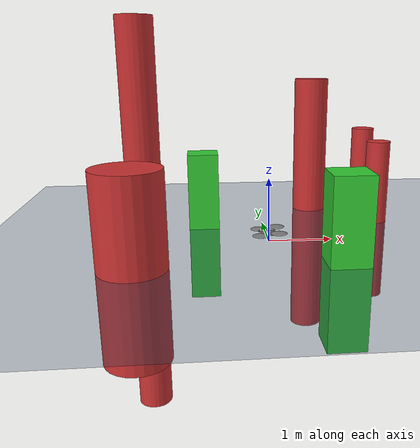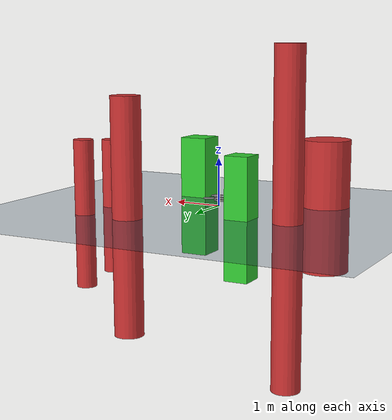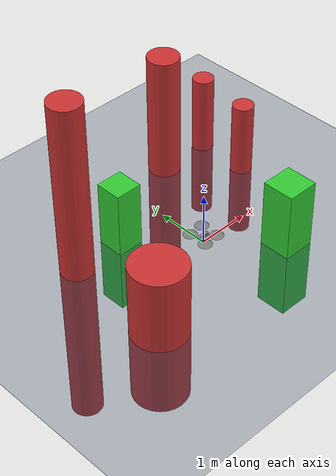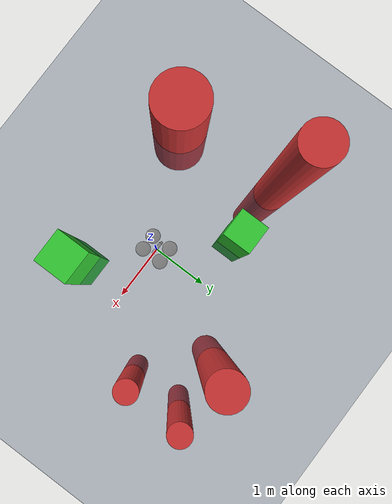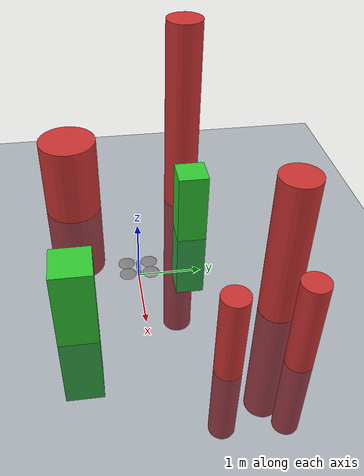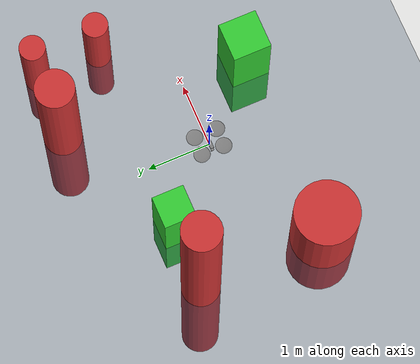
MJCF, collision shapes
<mujoco model="Skydio X2 scene">
  <include file="x2.xml"/>

  <statistic center="0 0 0.1" extent="0.6" meansize=".05"/>

  <visual>
    <headlight diffuse="0.6 0.6 0.6" ambient="0.3 0.3 0.3" specular="0 0 0"/>
    <rgba haze="0.15 0.25 0.35 1"/>
    <global azimuth="-20" elevation="-20" ellipsoidinertia="true"/>
  </visual>

  <asset>
    <texture type="skybox" builtin="gradient" rgb1="0.3 0.5 0.7" rgb2="0 0 0" width="512" height="3072"/>
    <texture type="2d" name="groundplane" builtin="checker" mark="edge" rgb1="0.2 0.3 0.4" rgb2="0.1 0.2 0.3"
      markrgb="0.8 0.8 0.8" width="300" height="300"/>
    <material name="groundplane" texture="groundplane" texuniform="true" texrepeat="5 5" reflectance="0.2"/>
  </asset>

  <worldbody>
    <light pos="0 0 1.5" dir="0 0 -1" directional="true"/>
    <geom name="floor" size="0 0 0.05" type="plane" material="groundplane"/>

    <geom name="cylinder_obstacle1" type="cylinder" size="0.2 1.5" pos="2 2 0" rgba="0.8 0.2 0.2 1" />
    <geom name="cylinder_obstacle2" type="cylinder" size="0.3 2.4" pos="1 2 0" rgba="0.8 0.2 0.2 1"/>
    <geom name="cylinder_obstacle3" type="cylinder" size="0.2 1.4" pos="2 1 0" rgba="0.8 0.2 0.2 1"/>
    <geom name="cylinder_obstacle4" type="cylinder" size="0.3 3.4" pos="-2 1 0" rgba="0.8 0.2 0.2 1"/>
    <geom name="cylinder_obstacle5" type="cylinder" size="0.5 1.4" pos="-2 -1 0" rgba="0.8 0.2 0.2 1"/>

    <geom name="box_obstacle1" pos="1 -1 0" type="box" size="0.3 0.3 1.3" rgba="0.2 0.8 0.2 1"/>
    <geom name="box_obstacle2" pos="-1 1 0" type="box" size="0.25 0.25 1.25" rgba="0.2 0.8 0.2 1"/>

  </worldbody>
</mujoco>

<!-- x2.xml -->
<mujoco model="Skydio X2">
  <compiler autolimits="true" assetdir="assets"/>

  <option timestep="0.02" density="1.225" viscosity="1.8e-5"/>

  <default>
    <default class="x2">
      <geom mass="0"/>
      <motor ctrlrange="0 13"/>
      <mesh scale="0.01 0.01 0.01"/>
      <default class="visual">
        <geom group="2" type="mesh" contype="0" conaffinity="0"/>
      </default>
      <default class="collision">
        <geom group="3" type="box"/>
        <default class="rotor">
          <geom type="ellipsoid" size=".13 .13 .01"/>
        </default>
      </default>
      <site group="5"/>
    </default>
  </default>

  <asset>
    <texture type="2d" file="X2_lowpoly_texture_SpinningProps_1024.png"/>
    <material name="phong3SG" texture="X2_lowpoly_texture_SpinningProps_1024"/>
    <material name="invisible" rgba="0 0 0 0"/>

    <mesh class="x2" file="X2_lowpoly.obj"/>
  </asset>

  <worldbody>
    <light name="spotlight" mode="targetbodycom" target="x2" pos="0 -1 2"/>
    <body name="x2" pos="0 0 0.1" childclass="x2">
      <freejoint/>
      <!-- X-forward looking camera -->
      <camera name="front_cam" pos="0.2 0 0.05" quat="0.9239 0 -0.3827 0" mode="fixed"/>

      <!-- Z-downward facing camera -->
      <camera name="down_cam" pos="0 0 -0.05" quat="1 0 0 0" mode="fixed"/>

      <!-- X-rear view camera -->
      <camera name="rear_cam" pos="-0.2 0 0.05" quat="0.7071 0 0.7071 0" mode="fixed"/>

      <!-- Y-left-looking camera -->
      <camera name="left_cam" pos="0 0.15 0.05" quat="0.7071 0 0 0.7071" mode="fixed"/>

      <!-- Y-right-looking camera -->
      <camera name="right_cam" pos="0 -0.15 0.05" quat="0.7071 0 0 -0.7071" mode="fixed"/>

      <site name="imu" pos="0 0 .02"/>
      <geom material="phong3SG" mesh="X2_lowpoly" class="visual" quat="0 0 1 1"/>
      <geom class="collision" size=".06 .027 .02" pos=".04 0 .02"/>
      <geom class="collision" size=".06 .027 .02" pos=".04 0 .06"/>
      <geom class="collision" size=".05 .027 .02" pos="-.07 0 .065"/>
      <geom class="collision" size=".023 .017 .01" pos="-.137 .008 .065" quat="1 0 0 1"/>
      <geom name="rotor1" class="rotor" pos="-.14 -.18 .05" mass=".25"/>
      <geom name="rotor2" class="rotor" pos="-.14 .18 .05" mass=".25"/>
      <geom name="rotor3" class="rotor" pos=".14 .18 .08" mass=".25"/>
      <geom name="rotor4" class="rotor" pos=".14 -.18 .08" mass=".25"/>
      <geom size=".16 .04 .02" pos="0 0 0.02" type="ellipsoid" mass=".325" class="visual" material="invisible"/>
      <site name="thrust1" pos="-.14 -.18 .05"/>
      <site name="thrust2" pos="-.14 .18 .05"/>
      <site name="thrust3" pos=".14 .18 .08"/>
      <site name="thrust4" pos=".14 -.18 .08"/>

      <!-- simple Render range -->
      <site name="rf_front" pos="0.1 0 0.05" zaxis="1 0 0"/>
      <site name="rf_left" pos="0 0 0.01" zaxis="0 -1 0"/>
      <site name="rf_down" pos="0 0 -0.05" zaxis="0 0 -1"/>
      <site name="rf_right" pos="0 0.1 0.05" zaxis="0 1 0"/>

      <!-- 360 Lidar -->
      <site name="rf_0" pos="0.1 0 0.05" zaxis="1 0 0"/>
      <site name="rf_15" pos="0.1 0 0.05" zaxis="0.9659 0.2588 0"/>
      <site name="rf_30" pos="0.1 0 0.05" zaxis="0.8660 0.5 0"/>
      <site name="rf_45" pos="0.1 0 0.05" zaxis="0.7071 0.7071 0"/>
      <site name="rf_60" pos="0.1 0 0.05" zaxis="0.5 0.8660 0"/>
      <site name="rf_75" pos="0.1 0 0.05" zaxis="0.2588 0.9659 0"/>
      <site name="rf_90" pos="0.1 0 0.05" zaxis="0 1 0"/>
      <site name="rf_105" pos="0.1 0 0.05" zaxis="-0.2588 0.9659 0"/>
      <site name="rf_120" pos="0.1 0 0.05" zaxis="-0.5 0.8660 0"/>
      <site name="rf_135" pos="0.1 0 0.05" zaxis="-0.7071 0.7071 0"/>
      <site name="rf_150" pos="0.1 0 0.05" zaxis="-0.8660 0.5 0"/>
      <site name="rf_165" pos="0.1 0 0.05" zaxis="-0.9659 0.2588 0"/>
      <site name="rf_180" pos="0.1 0 0.05" zaxis="-1 0 0"/>
      <site name="rf_195" pos="0.1 0 0.05" zaxis="-0.9659 -0.2588 0"/>
      <site name="rf_210" pos="0.1 0 0.05" zaxis="-0.8660 -0.5 0"/>
      <site name="rf_225" pos="0.1 0 0.05" zaxis="-0.7071 -0.7071 0"/>
      <site name="rf_240" pos="0.1 0 0.05" zaxis="-0.5 -0.8660 0"/>
      <site name="rf_255" pos="0.1 0 0.05" zaxis="-0.2588 -0.9659 0"/>
      <site name="rf_270" pos="0.1 0 0.05" zaxis="0 -1 0"/>
      <site name="rf_285" pos="0.1 0 0.05" zaxis="0.2588 -0.9659 0"/>
      <site name="rf_300" pos="0.1 0 0.05" zaxis="0.5 -0.8660 0"/>
      <site name="rf_315" pos="0.1 0 0.05" zaxis="0.7071 -0.7071 0"/>
      <site name="rf_330" pos="0.1 0 0.05" zaxis="0.8660 -0.5 0"/>
      <site name="rf_345" pos="0.1 0 0.05" zaxis="0.9659 -0.2588 0"/>
    </body>
  </worldbody>

  <actuator>
    <motor class="x2" name="thrust1" site="thrust1" gear="0 0 1 0 0 -.0201"/>
    <motor class="x2" name="thrust2" site="thrust2" gear="0 0 1 0 0  .0201"/>
    <motor class="x2" name="thrust3" site="thrust3" gear="0 0 1 0 0  .0201"/>
    <motor class="x2" name="thrust4" site="thrust4" gear="0 0 1 0 0 -.0201"/>
  </actuator>

  <sensor>
    <gyro name="body_gyro" site="imu"/>
    <accelerometer name="body_linacc" site="imu"/>
    <framequat name="body_quat" objtype="site" objname="imu"/>

    <!-- 360 Lidar -->
    <rangefinder name="body_rf_0" site="rf_0" cutoff="10" noise="0.01"/>
    <rangefinder name="body_rf_15" site="rf_15" cutoff="10" noise="0.01"/>
    <rangefinder name="body_rf_30" site="rf_30" cutoff="10" noise="0.01"/>
    <rangefinder name="body_rf_45" site="rf_45" cutoff="10" noise="0.01"/>
    <rangefinder name="body_rf_60" site="rf_60" cutoff="10" noise="0.01"/>
    <rangefinder name="body_rf_75" site="rf_75" cutoff="10" noise="0.01"/>
    <rangefinder name="body_rf_90" site="rf_90" cutoff="10" noise="0.01"/>
    <rangefinder name="body_rf_105" site="rf_105" cutoff="10" noise="0.01"/>
    <rangefinder name="body_rf_120" site="rf_120" cutoff="10" noise="0.01"/>
    <rangefinder name="body_rf_135" site="rf_135" cutoff="10" noise="0.01"/>
    <rangefinder name="body_rf_150" site="rf_150" cutoff="10" noise="0.01"/>
    <rangefinder name="body_rf_165" site="rf_165" cutoff="10" noise="0.01"/>
    <rangefinder name="body_rf_180" site="rf_180" cutoff="10" noise="0.01"/>
    <rangefinder name="body_rf_195" site="rf_195" cutoff="10" noise="0.01"/>
    <rangefinder name="body_rf_210" site="rf_210" cutoff="10" noise="0.01"/>
    <rangefinder name="body_rf_225" site="rf_225" cutoff="10" noise="0.01"/>
    <rangefinder name="body_rf_240" site="rf_240" cutoff="10" noise="0.01"/>
    <rangefinder name="body_rf_255" site="rf_255" cutoff="10" noise="0.01"/>
    <rangefinder name="body_rf_270" site="rf_270" cutoff="10" noise="0.01"/>
    <rangefinder name="body_rf_285" site="rf_285" cutoff="10" noise="0.01"/>
    <rangefinder name="body_rf_300" site="rf_300" cutoff="10" noise="0.01"/>
    <rangefinder name="body_rf_315" site="rf_315" cutoff="10" noise="0.01"/>
    <rangefinder name="body_rf_330" site="rf_330" cutoff="10" noise="0.01"/>
    <rangefinder name="body_rf_345" site="rf_345" cutoff="10" noise="0.01"/>
  </sensor>

  <keyframe>
    <key name="hover" qpos="0 0 .3 1 0 0 0" ctrl="3.2495625 3.2495625 3.2495625 3.2495625"/>
  </keyframe>
</mujoco>
